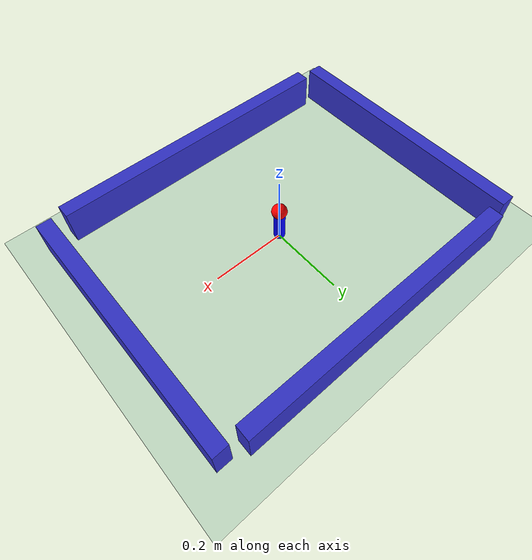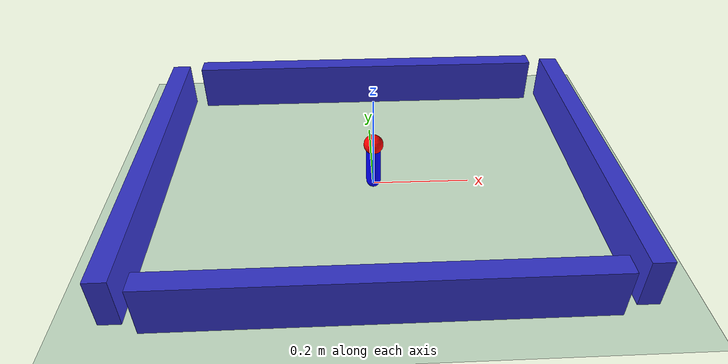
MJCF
<mujoco model="minimal_foosball_stage1b">
  <option timestep="0.002" gravity="0 0 -9.81"/>

  <worldbody>
    <!-- Ground plane -->
    <body name="ground" pos="0 0 0">
      <geom name="ground" type="plane"
            size="2 2 0.1"
            contype="1" conaffinity="1"
            rgba="0.8 0.9 0.8 1"/>
    </body>

    <!-- Ball: starts a bit above ground so it drops and then rolls -->
    <body name="ball_body" pos="0 0 0.10">
      <joint name="ball_free" type="free"/>
      <geom name="ball" type="sphere" size="0.02"
            density="1000"
            contype="1" conaffinity="1"
            rgba="1 0 0 1"/>
    </body>

    <!-- Simple field walls (just to keep ball in a box) -->
    <body name="wall_top" pos="0 0.35 0.05">
      <geom name="wall_top_geom" type="box"
            size="0.40 0.02 0.05"
            contype="1" conaffinity="1"
            rgba="0.2 0.2 0.8 1"/>
    </body>
    <body name="wall_bottom" pos="0 -0.35 0.05">
      <geom name="wall_bottom_geom" type="box"
            size="0.40 0.02 0.05"
            contype="1" conaffinity="1"
            rgba="0.2 0.2 0.8 1"/>
    </body>
    <body name="wall_left" pos="-0.45 0 0.05">
      <geom name="wall_left_geom" type="box"
            size="0.02 0.35 0.05"
            contype="1" conaffinity="1"
            rgba="0.2 0.2 0.8 1"/>
    </body>
    <body name="wall_right" pos="0.45 0 0.05">
      <geom name="wall_right_geom" type="box"
            size="0.02 0.35 0.05"
            contype="1" conaffinity="1"
            rgba="0.2 0.2 0.8 1"/>
    </body>

    <!-- One rod with one player -->
    <!-- Put rod/body at ground level so player capsule is actually near the ball -->
    <body name="rod_1" pos="0 0 0">
      <!-- Slide joint along y -->
      <joint name="rod_1_slide" type="slide" axis="0 1 0" range="-0.30 0.30"/>

      <body name="player_1" pos="0 0 0">
        <!-- Capsule spans z = 0.01 to 0.09 so its center is at z=0.05 -->
        <!-- Ball center ~0.02 at rest, radii combine → they can collide -->
        <geom name="player_1_geom" type="capsule"
              fromto="0 0 0.01  0 0 0.09"
              size="0.015"
              density="500"
              contype="1" conaffinity="1"
              rgba="0 0 1 1"/>
      </body>
    </body>
  </worldbody>

  <actuator>
    <motor name="rod_1_motor" joint="rod_1_slide" gear="1"/>
  </actuator>
</mujoco>
